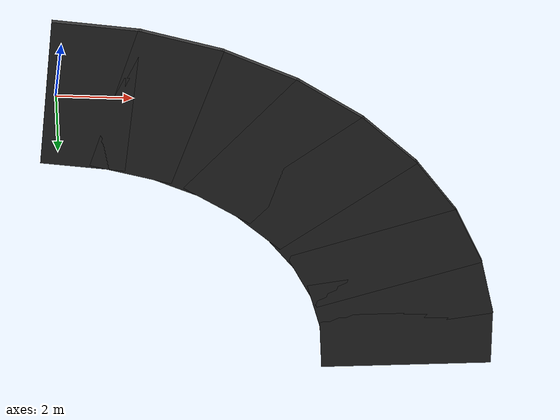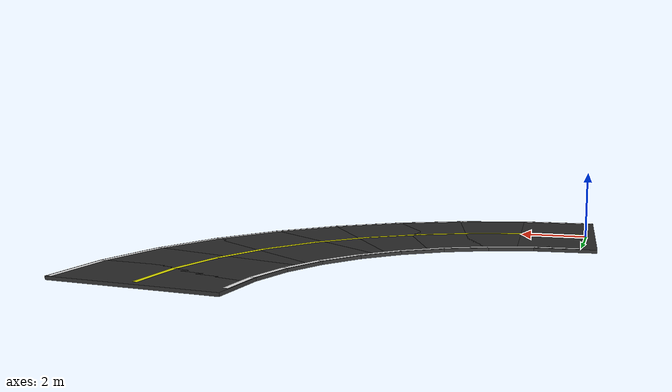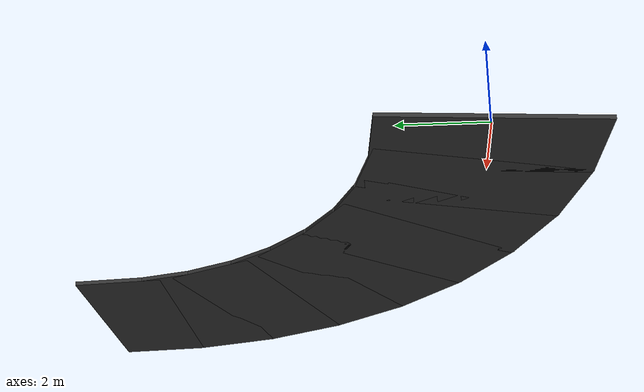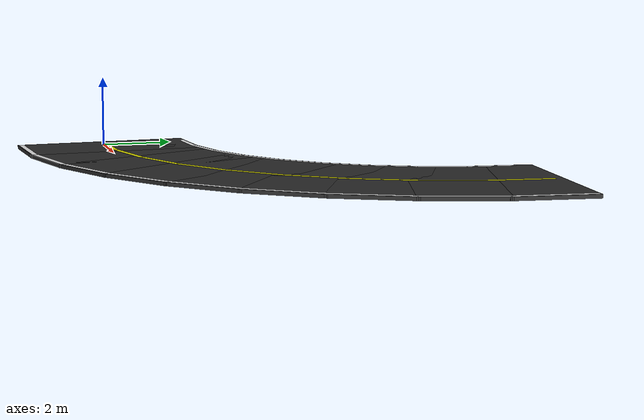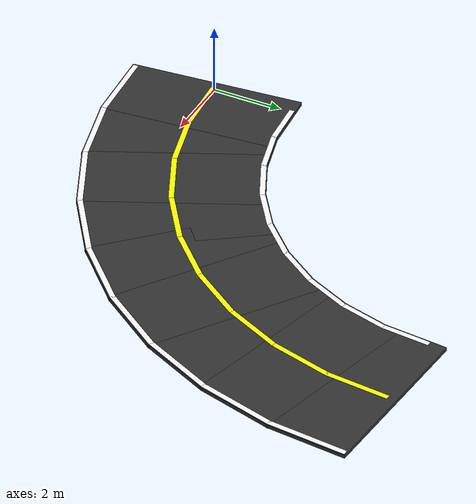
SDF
<?xml version="1.0" ?>
<sdf version="1.6">
  <model name="road_curved">
    <static>true</static>
    <link name="link">
      <visual name="visual_segment_0">
        <pose>0.8716 0.0381 0 0 0 0.0873</pose>
        <geometry>
          <box>
            <size>2.2789 5.0 0.1</size>
          </box>
        </geometry>
        <material>
          <ambient>0.2 0.2 0.2 1</ambient>
          <diffuse>0.2 0.2 0.2 1</diffuse>
          <specular>0.1 0.1 0.1 1</specular>
        </material>
      </visual>
      <collision name="collision_segment_0">
        <pose>0.8716 0.0381 0 0 0 0.0873</pose>
        <geometry>
          <box>
            <size>2.2789 5.0 0.1</size>
          </box>
        </geometry>
      </collision>
      <visual name="visual_center_line_0">
        <pose>0.8716 0.0381 0.051000000000000004 0 0 0.0873</pose>
        <geometry>
          <box>
            <size>1.7931 0.15 0.001</size>
          </box>
        </geometry>
        <material>
          <ambient>1 1 0 1</ambient>
          <diffuse>1 1 0 1</diffuse>
        </material>
      </visual>
      <visual name="visual_inner_line_0">
        <pose>0.6624 2.4289 0.051000000000000004 0 0 0.0873</pose>
        <geometry>
          <box>
            <size>1.3748 0.15 0.001</size>
          </box>
        </geometry>
        <material>
          <ambient>1 1 1 1</ambient>
          <diffuse>1 1 1 1</diffuse>
        </material>
      </visual>
      <visual name="visual_outer_line_0">
        <pose>1.0807 -2.3528 0.051000000000000004 0 0 0.0873</pose>
        <geometry>
          <box>
            <size>2.2115 0.15 0.001</size>
          </box>
        </geometry>
        <material>
          <ambient>1 1 1 1</ambient>
          <diffuse>1 1 1 1</diffuse>
        </material>
      </visual>
      <visual name="visual_segment_1">
        <pose>2.5882 0.3407 0 0 0 0.2618</pose>
        <geometry>
          <box>
            <size>2.2789 5.0 0.1</size>
          </box>
        </geometry>
        <material>
          <ambient>0.2 0.2 0.2 1</ambient>
          <diffuse>0.2 0.2 0.2 1</diffuse>
          <specular>0.1 0.1 0.1 1</specular>
        </material>
      </visual>
      <collision name="collision_segment_1">
        <pose>2.5882 0.3407 0 0 0 0.2618</pose>
        <geometry>
          <box>
            <size>2.2789 5.0 0.1</size>
          </box>
        </geometry>
      </collision>
      <visual name="visual_center_line_1">
        <pose>2.5882 0.3407 0.051000000000000004 0 0 0.2618</pose>
        <geometry>
          <box>
            <size>1.7931 0.15 0.001</size>
          </box>
        </geometry>
        <material>
          <ambient>1 1 0 1</ambient>
          <diffuse>1 1 0 1</diffuse>
        </material>
      </visual>
      <visual name="visual_inner_line_1">
        <pose>1.9670 2.6590 0.051000000000000004 0 0 0.2618</pose>
        <geometry>
          <box>
            <size>1.3748 0.15 0.001</size>
          </box>
        </geometry>
        <material>
          <ambient>1 1 1 1</ambient>
          <diffuse>1 1 1 1</diffuse>
        </material>
      </visual>
      <visual name="visual_outer_line_1">
        <pose>3.2094 -1.9775 0.051000000000000004 0 0 0.2618</pose>
        <geometry>
          <box>
            <size>2.2115 0.15 0.001</size>
          </box>
        </geometry>
        <material>
          <ambient>1 1 1 1</ambient>
          <diffuse>1 1 1 1</diffuse>
        </material>
      </visual>
      <visual name="visual_segment_2">
        <pose>4.2262 0.9369 0 0 0 0.4363</pose>
        <geometry>
          <box>
            <size>2.2789 5.0 0.1</size>
          </box>
        </geometry>
        <material>
          <ambient>0.2 0.2 0.2 1</ambient>
          <diffuse>0.2 0.2 0.2 1</diffuse>
          <specular>0.1 0.1 0.1 1</specular>
        </material>
      </visual>
      <collision name="collision_segment_2">
        <pose>4.2262 0.9369 0 0 0 0.4363</pose>
        <geometry>
          <box>
            <size>2.2789 5.0 0.1</size>
          </box>
        </geometry>
      </collision>
      <visual name="visual_center_line_2">
        <pose>4.2262 0.9369 0.051000000000000004 0 0 0.4363</pose>
        <geometry>
          <box>
            <size>1.7931 0.15 0.001</size>
          </box>
        </geometry>
        <material>
          <ambient>1 1 0 1</ambient>
          <diffuse>1 1 0 1</diffuse>
        </material>
      </visual>
      <visual name="visual_inner_line_2">
        <pose>3.2119 3.1121 0.051000000000000004 0 0 0.4363</pose>
        <geometry>
          <box>
            <size>1.3748 0.15 0.001</size>
          </box>
        </geometry>
        <material>
          <ambient>1 1 1 1</ambient>
          <diffuse>1 1 1 1</diffuse>
        </material>
      </visual>
      <visual name="visual_outer_line_2">
        <pose>5.2405 -1.2382 0.051000000000000004 0 0 0.4363</pose>
        <geometry>
          <box>
            <size>2.2115 0.15 0.001</size>
          </box>
        </geometry>
        <material>
          <ambient>1 1 1 1</ambient>
          <diffuse>1 1 1 1</diffuse>
        </material>
      </visual>
      <visual name="visual_segment_3">
        <pose>5.7358 1.8085 0 0 0 0.6109</pose>
        <geometry>
          <box>
            <size>2.2789 5.0 0.1</size>
          </box>
        </geometry>
        <material>
          <ambient>0.2 0.2 0.2 1</ambient>
          <diffuse>0.2 0.2 0.2 1</diffuse>
          <specular>0.1 0.1 0.1 1</specular>
        </material>
      </visual>
      <collision name="collision_segment_3">
        <pose>5.7358 1.8085 0 0 0 0.6109</pose>
        <geometry>
          <box>
            <size>2.2789 5.0 0.1</size>
          </box>
        </geometry>
      </collision>
      <visual name="visual_center_line_3">
        <pose>5.7358 1.8085 0.051000000000000004 0 0 0.6109</pose>
        <geometry>
          <box>
            <size>1.7931 0.15 0.001</size>
          </box>
        </geometry>
        <material>
          <ambient>1 1 0 1</ambient>
          <diffuse>1 1 0 1</diffuse>
        </material>
      </visual>
      <visual name="visual_inner_line_3">
        <pose>4.3592 3.7744 0.051000000000000004 0 0 0.6109</pose>
        <geometry>
          <box>
            <size>1.3748 0.15 0.001</size>
          </box>
        </geometry>
        <material>
          <ambient>1 1 1 1</ambient>
          <diffuse>1 1 1 1</diffuse>
        </material>
      </visual>
      <visual name="visual_outer_line_3">
        <pose>7.1123 -0.1575 0.051000000000000004 0 0 0.6109</pose>
        <geometry>
          <box>
            <size>2.2115 0.15 0.001</size>
          </box>
        </geometry>
        <material>
          <ambient>1 1 1 1</ambient>
          <diffuse>1 1 1 1</diffuse>
        </material>
      </visual>
      <visual name="visual_segment_4">
        <pose>7.0711 2.9289 0 0 0 0.7854</pose>
        <geometry>
          <box>
            <size>2.2789 5.0 0.1</size>
          </box>
        </geometry>
        <material>
          <ambient>0.2 0.2 0.2 1</ambient>
          <diffuse>0.2 0.2 0.2 1</diffuse>
          <specular>0.1 0.1 0.1 1</specular>
        </material>
      </visual>
      <collision name="collision_segment_4">
        <pose>7.0711 2.9289 0 0 0 0.7854</pose>
        <geometry>
          <box>
            <size>2.2789 5.0 0.1</size>
          </box>
        </geometry>
      </collision>
      <visual name="visual_center_line_4">
        <pose>7.0711 2.9289 0.051000000000000004 0 0 0.7854</pose>
        <geometry>
          <box>
            <size>1.7931 0.15 0.001</size>
          </box>
        </geometry>
        <material>
          <ambient>1 1 0 1</ambient>
          <diffuse>1 1 0 1</diffuse>
        </material>
      </visual>
      <visual name="visual_inner_line_4">
        <pose>5.3740 4.6260 0.051000000000000004 0 0 0.7854</pose>
        <geometry>
          <box>
            <size>1.3748 0.15 0.001</size>
          </box>
        </geometry>
        <material>
          <ambient>1 1 1 1</ambient>
          <diffuse>1 1 1 1</diffuse>
        </material>
      </visual>
      <visual name="visual_outer_line_4">
        <pose>8.7681 1.2319 0.051000000000000004 0 0 0.7854</pose>
        <geometry>
          <box>
            <size>2.2115 0.15 0.001</size>
          </box>
        </geometry>
        <material>
          <ambient>1 1 1 1</ambient>
          <diffuse>1 1 1 1</diffuse>
        </material>
      </visual>
      <visual name="visual_segment_5">
        <pose>8.1915 4.2642 0 0 0 0.9599</pose>
        <geometry>
          <box>
            <size>2.2789 5.0 0.1</size>
          </box>
        </geometry>
        <material>
          <ambient>0.2 0.2 0.2 1</ambient>
          <diffuse>0.2 0.2 0.2 1</diffuse>
          <specular>0.1 0.1 0.1 1</specular>
        </material>
      </visual>
      <collision name="collision_segment_5">
        <pose>8.1915 4.2642 0 0 0 0.9599</pose>
        <geometry>
          <box>
            <size>2.2789 5.0 0.1</size>
          </box>
        </geometry>
      </collision>
      <visual name="visual_center_line_5">
        <pose>8.1915 4.2642 0.051000000000000004 0 0 0.9599</pose>
        <geometry>
          <box>
            <size>1.7931 0.15 0.001</size>
          </box>
        </geometry>
        <material>
          <ambient>1 1 0 1</ambient>
          <diffuse>1 1 0 1</diffuse>
        </material>
      </visual>
      <visual name="visual_inner_line_5">
        <pose>6.2256 5.6408 0.051000000000000004 0 0 0.9599</pose>
        <geometry>
          <box>
            <size>1.3748 0.15 0.001</size>
          </box>
        </geometry>
        <material>
          <ambient>1 1 1 1</ambient>
          <diffuse>1 1 1 1</diffuse>
        </material>
      </visual>
      <visual name="visual_outer_line_5">
        <pose>10.1575 2.8877 0.051000000000000004 0 0 0.9599</pose>
        <geometry>
          <box>
            <size>2.2115 0.15 0.001</size>
          </box>
        </geometry>
        <material>
          <ambient>1 1 1 1</ambient>
          <diffuse>1 1 1 1</diffuse>
        </material>
      </visual>
      <visual name="visual_segment_6">
        <pose>9.0631 5.7738 0 0 0 1.1345</pose>
        <geometry>
          <box>
            <size>2.2789 5.0 0.1</size>
          </box>
        </geometry>
        <material>
          <ambient>0.2 0.2 0.2 1</ambient>
          <diffuse>0.2 0.2 0.2 1</diffuse>
          <specular>0.1 0.1 0.1 1</specular>
        </material>
      </visual>
      <collision name="collision_segment_6">
        <pose>9.0631 5.7738 0 0 0 1.1345</pose>
        <geometry>
          <box>
            <size>2.2789 5.0 0.1</size>
          </box>
        </geometry>
      </collision>
      <visual name="visual_center_line_6">
        <pose>9.0631 5.7738 0.051000000000000004 0 0 1.1345</pose>
        <geometry>
          <box>
            <size>1.7931 0.15 0.001</size>
          </box>
        </geometry>
        <material>
          <ambient>1 1 0 1</ambient>
          <diffuse>1 1 0 1</diffuse>
        </material>
      </visual>
      <visual name="visual_inner_line_6">
        <pose>6.8879 6.7881 0.051000000000000004 0 0 1.1345</pose>
        <geometry>
          <box>
            <size>1.3748 0.15 0.001</size>
          </box>
        </geometry>
        <material>
          <ambient>1 1 1 1</ambient>
          <diffuse>1 1 1 1</diffuse>
        </material>
      </visual>
      <visual name="visual_outer_line_6">
        <pose>11.2382 4.7595 0.051000000000000004 0 0 1.1345</pose>
        <geometry>
          <box>
            <size>2.2115 0.15 0.001</size>
          </box>
        </geometry>
        <material>
          <ambient>1 1 1 1</ambient>
          <diffuse>1 1 1 1</diffuse>
        </material>
      </visual>
      <visual name="visual_segment_7">
        <pose>9.6593 7.4118 0 0 0 1.3090</pose>
        <geometry>
          <box>
            <size>2.2789 5.0 0.1</size>
          </box>
        </geometry>
        <material>
          <ambient>0.2 0.2 0.2 1</ambient>
          <diffuse>0.2 0.2 0.2 1</diffuse>
          <specular>0.1 0.1 0.1 1</specular>
        </material>
      </visual>
      <collision name="collision_segment_7">
        <pose>9.6593 7.4118 0 0 0 1.3090</pose>
        <geometry>
          <box>
            <size>2.2789 5.0 0.1</size>
          </box>
        </geometry>
      </collision>
      <visual name="visual_center_line_7">
        <pose>9.6593 7.4118 0.051000000000000004 0 0 1.3090</pose>
        <geometry>
          <box>
            <size>1.7931 0.15 0.001</size>
          </box>
        </geometry>
        <material>
          <ambient>1 1 0 1</ambient>
          <diffuse>1 1 0 1</diffuse>
        </material>
      </visual>
      <visual name="visual_inner_line_7">
        <pose>7.3410 8.0330 0.051000000000000004 0 0 1.3090</pose>
        <geometry>
          <box>
            <size>1.3748 0.15 0.001</size>
          </box>
        </geometry>
        <material>
          <ambient>1 1 1 1</ambient>
          <diffuse>1 1 1 1</diffuse>
        </material>
      </visual>
      <visual name="visual_outer_line_7">
        <pose>11.9775 6.7906 0.051000000000000004 0 0 1.3090</pose>
        <geometry>
          <box>
            <size>2.2115 0.15 0.001</size>
          </box>
        </geometry>
        <material>
          <ambient>1 1 1 1</ambient>
          <diffuse>1 1 1 1</diffuse>
        </material>
      </visual>
      <visual name="visual_segment_8">
        <pose>9.9619 9.1284 0 0 0 1.4835</pose>
        <geometry>
          <box>
            <size>2.2789 5.0 0.1</size>
          </box>
        </geometry>
        <material>
          <ambient>0.2 0.2 0.2 1</ambient>
          <diffuse>0.2 0.2 0.2 1</diffuse>
          <specular>0.1 0.1 0.1 1</specular>
        </material>
      </visual>
      <collision name="collision_segment_8">
        <pose>9.9619 9.1284 0 0 0 1.4835</pose>
        <geometry>
          <box>
            <size>2.2789 5.0 0.1</size>
          </box>
        </geometry>
      </collision>
      <visual name="visual_center_line_8">
        <pose>9.9619 9.1284 0.051000000000000004 0 0 1.4835</pose>
        <geometry>
          <box>
            <size>1.7931 0.15 0.001</size>
          </box>
        </geometry>
        <material>
          <ambient>1 1 0 1</ambient>
          <diffuse>1 1 0 1</diffuse>
        </material>
      </visual>
      <visual name="visual_inner_line_8">
        <pose>7.5711 9.3376 0.051000000000000004 0 0 1.4835</pose>
        <geometry>
          <box>
            <size>1.3748 0.15 0.001</size>
          </box>
        </geometry>
        <material>
          <ambient>1 1 1 1</ambient>
          <diffuse>1 1 1 1</diffuse>
        </material>
      </visual>
      <visual name="visual_outer_line_8">
        <pose>12.3528 8.9193 0.051000000000000004 0 0 1.4835</pose>
        <geometry>
          <box>
            <size>2.2115 0.15 0.001</size>
          </box>
        </geometry>
        <material>
          <ambient>1 1 1 1</ambient>
          <diffuse>1 1 1 1</diffuse>
        </material>
      </visual>
    </link>
  </model>
</sdf>
